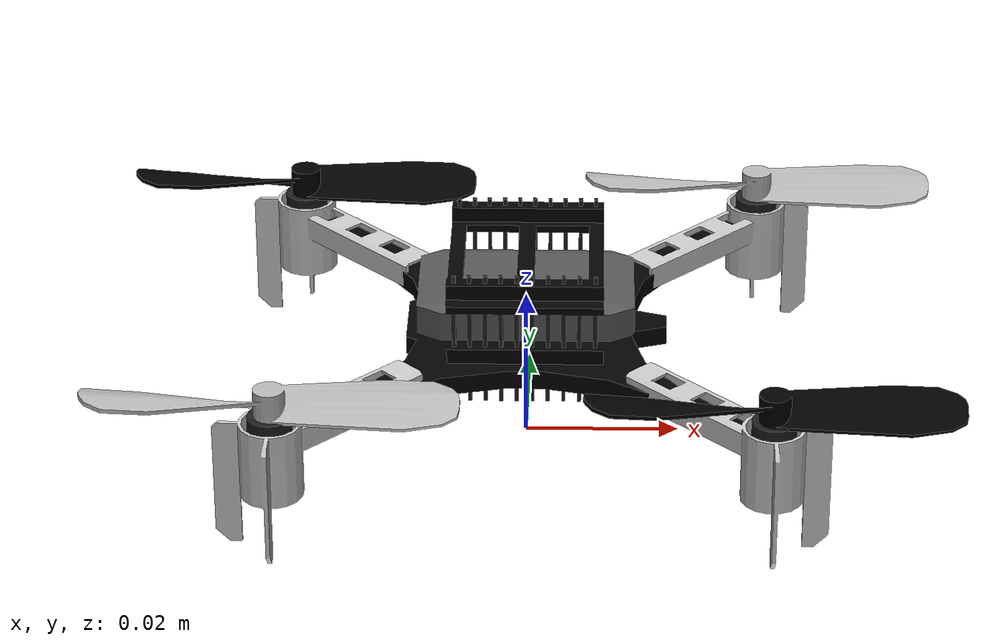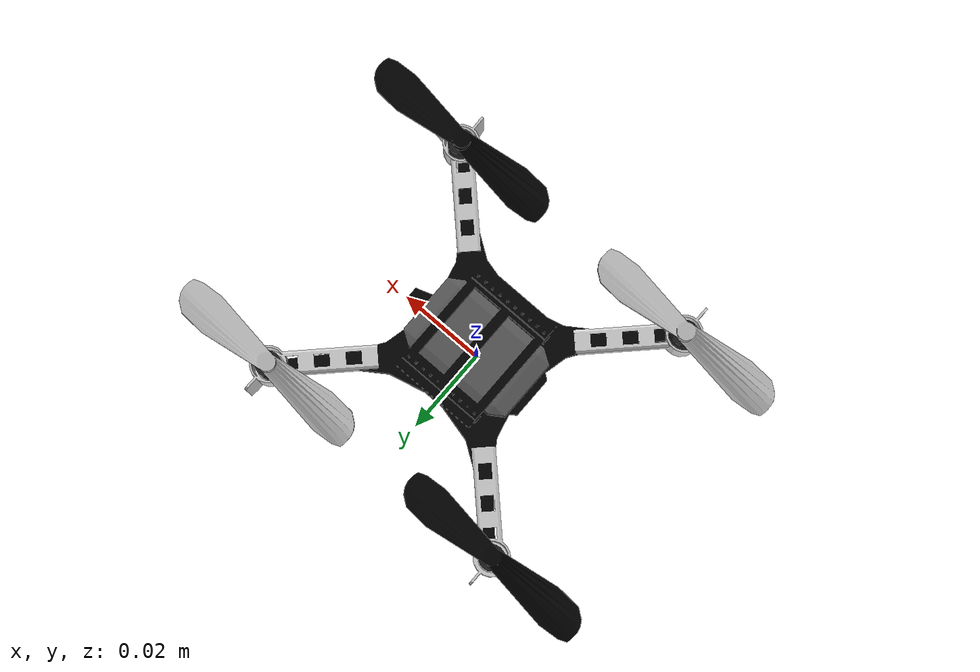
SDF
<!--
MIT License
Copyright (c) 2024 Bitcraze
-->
<?xml version="1.0" ?>

<sdf version="1.8">
  <model name="crazyflie">
    <link name="crazyflie/body">
      <pose> 0 0 17.425E-3 0 0 0</pose>
      <inertial>
        <mass>0.025</mass>
        <inertia>
          <ixx>16.571710E-06</ixx>
          <iyy>16.655602E-06</iyy>
          <izz>29.261652E-06</izz>
          <ixy>0.830806E-06</ixy>
          <ixz>0.718277E-06</ixz>
          <iyz>1.800197E-06</iyz>
        </inertia>
      </inertial>
      <collision name="crazyflie/body_collision">
        <geometry>
          <box>
            <size>0.10 0.10 34.850E-3</size>
          </box>
        </geometry>
      </collision>
      <visual name="crazyflie/body_visual">
        <geometry>
          <mesh>
            <uri>../../../meshes/collada_files/cf2_assembly.dae</uri>
          </mesh>
        </geometry>
      </visual>
      <sensor name='multiranger' type='gpu_lidar'>"
        <pose relative_to='crazyflie/base_link'>0 0 0.1 0 0 0</pose>
        <topic>lidar</topic>
        <update_rate>10</update_rate>
        <ray>
          <scan>
            <horizontal>
                <samples>4</samples>
                <resolution>1</resolution>
                <min_angle>-3.14</min_angle>
                <max_angle>1.57</max_angle>
            </horizontal>
            <vertical>
                <samples>1</samples>
                <resolution>0.01</resolution>
                <min_angle>0</min_angle>
                <max_angle>0</max_angle>
            </vertical>
          </scan>
          <range>
            <min>0.01</min>
            <max>3.49</max>
            <resolution>0.01</resolution>
          </range>
        </ray>
        <always_on>1</always_on>
        <visualize>true</visualize>
      </sensor>
    </link>
    <link name="crazyflie/m1_prop">
      <pose>0.031 -0.031 0.021 0 0 0</pose>
      <inertial>
        <mass>0.0008</mass>
        <inertia>
          <ixx>8.33333E-09</ixx>
          <iyy>1.08333E-07</iyy>
          <izz>1.13333E-07</izz>
        </inertia>
      </inertial>
      <visual name="crazyflie/m1_visual">
        <geometry>
          <mesh>
            <uri>../../../meshes/collada_files/ccw_prop.dae</uri>
          </mesh>
        </geometry>
      </visual>
    </link>
    <link name="crazyflie/m2_prop">
      <pose>-0.031 -0.031 0.021 0 0 0</pose>
      <inertial>
        <mass>0.0008</mass>
        <inertia>
          <ixx>8.33333E-09</ixx>
          <iyy>1.08333E-07</iyy>
          <izz>1.13333E-07</izz>
        </inertia>
      </inertial>
      <visual name="crazyflie/m2_visual">
        <geometry>
          <mesh>
            <uri>../../../meshes/collada_files/cw_prop.dae</uri>
          </mesh>
        </geometry>
      </visual>
    </link>
    <link name="crazyflie/m3_prop">
      <pose>-0.031 0.031 0.021 0 0 0</pose>
      <inertial>
        <mass>0.0008</mass>
        <inertia>
          <ixx>8.33333E-09</ixx>
          <iyy>1.08333E-07</iyy>
          <izz>1.13333E-07</izz>
        </inertia>
      </inertial>
      <visual name="crazyflie/m3_visual">
        <geometry>
          <mesh>
            <uri>../../../meshes/collada_files/ccw_prop.dae</uri>
          </mesh>
        </geometry>
      </visual>
    </link>
    <link name="crazyflie/m4_prop">
      <pose>0.031 0.031 0.021 0 0 0</pose>
      <inertial>
        <mass>0.0008</mass>
        <inertia>
          <ixx>8.33333E-09</ixx>
          <iyy>1.08333E-07</iyy>
          <izz>1.13333E-07</izz>
        </inertia>
      </inertial>
      <visual name="crazyflie/m4_visual">
        <geometry>
          <mesh>
            <uri>../../../meshes/collada_files/cw_prop.dae</uri>
          </mesh>
        </geometry>
      </visual>
    </link>
    <joint name="crazyflie/m1_joint" type="revolute">
      <child>crazyflie/m1_prop</child>
      <parent>crazyflie/body</parent>
      <axis>
        <xyz>0 0 1</xyz>
      </axis>
    </joint>
    <joint name="crazyflie/m2_joint" type="revolute">
      <child>crazyflie/m2_prop</child>
      <parent>crazyflie/body</parent>
      <axis>
        <xyz>0 0 1</xyz>
      </axis>
    </joint>
    <joint name="crazyflie/m3_joint" type="revolute">
      <child>crazyflie/m3_prop</child>
      <parent>crazyflie/body</parent>
      <axis>
        <xyz>0 0 1</xyz>
      </axis>
    </joint>
    <joint name="crazyflie/m4_joint" type="revolute">
      <child>crazyflie/m4_prop</child>
      <parent>crazyflie/body</parent>
      <axis>
        <xyz>0 0 1</xyz>
      </axis>
    </joint>
    <plugin
      filename="gz-sim-multicopter-motor-model-system"
      name="gz::sim::systems::MulticopterMotorModel">
      <robotNamespace>crazyflie</robotNamespace>
      <jointName>crazyflie/m1_joint</jointName>
      <linkName>crazyflie/m1_prop</linkName>
      <turningDirection>ccw</turningDirection>
      <maxRotVelocity>2618</maxRotVelocity>
      <motorConstant>1.28192e-08</motorConstant>
      <momentConstant>0.005964552</momentConstant>
      <rotorDragCoefficient>8.06428e-05</rotorDragCoefficient>
      <rollingMomentCoefficient>0.0000001</rollingMomentCoefficient>
      <rotorVelocitySlowdownSim>20</rotorVelocitySlowdownSim>
      <actuator_number>0</actuator_number>
      <motorType>velocity</motorType>
    </plugin>
    <plugin
      filename="gz-sim-multicopter-motor-model-system"
      name="gz::sim::systems::MulticopterMotorModel">
      <robotNamespace>crazyflie</robotNamespace>
      <jointName>crazyflie/m2_joint</jointName>
      <linkName>crazyflie/m2_prop</linkName>
      <turningDirection>cw</turningDirection>
      <maxRotVelocity>2618</maxRotVelocity>
      <motorConstant>1.28192e-08</motorConstant>
      <momentConstant>0.005964552</momentConstant>
      <rotorDragCoefficient>8.06428e-05</rotorDragCoefficient>
      <rollingMomentCoefficient>0.0000001</rollingMomentCoefficient>
      <rotorVelocitySlowdownSim>20</rotorVelocitySlowdownSim>
      <actuator_number>1</actuator_number>
      <motorType>velocity</motorType>
    </plugin>
    <plugin
      filename="gz-sim-multicopter-motor-model-system"
      name="gz::sim::systems::MulticopterMotorModel">
      <robotNamespace>crazyflie</robotNamespace>
      <jointName>crazyflie/m3_joint</jointName>
      <linkName>crazyflie/m3_prop</linkName>
      <turningDirection>ccw</turningDirection>
      <maxRotVelocity>2618</maxRotVelocity>
      <motorConstant>1.28192e-08</motorConstant>
      <momentConstant>0.005964552</momentConstant>
      <rotorDragCoefficient>8.06428e-05</rotorDragCoefficient>
      <rollingMomentCoefficient>0.0000001</rollingMomentCoefficient>
      <rotorVelocitySlowdownSim>20</rotorVelocitySlowdownSim>
      <actuator_number>2</actuator_number>
      <motorType>velocity</motorType>
    </plugin>
    <plugin
      filename="gz-sim-multicopter-motor-model-system"
      name="gz::sim::systems::MulticopterMotorModel">
      <robotNamespace>crazyflie</robotNamespace>
      <jointName>crazyflie/m4_joint</jointName>
      <linkName>crazyflie/m4_prop</linkName>
      <turningDirection>cw</turningDirection>
      <maxRotVelocity>2618</maxRotVelocity>
      <motorConstant>1.28192e-08</motorConstant>
      <momentConstant>0.005964552</momentConstant>
      <rotorDragCoefficient>8.06428e-05</rotorDragCoefficient>
      <rollingMomentCoefficient>0.0000001</rollingMomentCoefficient>
      <rotorVelocitySlowdownSim>20</rotorVelocitySlowdownSim>
      <actuator_number>3</actuator_number>
      <motorType>velocity</motorType>
    </plugin>
    <plugin
      filename="gz-sim-multicopter-control-system"
      name="gz::sim::systems::MulticopterVelocityControl">
      <robotNamespace>crazyflie</robotNamespace>
      <commandSubTopic>gazebo/command/twist</commandSubTopic>
      <enableSubTopic>enable</enableSubTopic>
      <comLinkName>crazyflie/body</comLinkName>
      <velocityGain>1.25 1.25 0.2425</velocityGain>
      <attitudeGain>0.02 0.02 0.02</attitudeGain>
      <angularRateGain>0.005 0.005 0.005</angularRateGain>
      <rotorConfiguration>
        <rotor>
          <jointName>crazyflie/m1_joint</jointName>
          <forceConstant>1.28192e-08</forceConstant>
          <momentConstant>0.005964552</momentConstant>
          <direction>1</direction>
        </rotor>
        <rotor>
          <jointName>crazyflie/m2_joint</jointName>
          <forceConstant>1.28192e-08</forceConstant>
          <momentConstant>0.005964552</momentConstant>
          <direction>-1</direction>
        </rotor>
        <rotor>
          <jointName>crazyflie/m3_joint</jointName>
          <forceConstant>1.28192e-08</forceConstant>
          <momentConstant>0.005964552</momentConstant>
          <direction>1</direction>
        </rotor>
        <rotor>
          <jointName>crazyflie/m4_joint</jointName>
          <forceConstant>1.28192e-08</forceConstant>
          <momentConstant>0.005964552</momentConstant>
          <direction>-1</direction>
        </rotor>
      </rotorConfiguration>
    </plugin>
    <plugin
      filename="gz-sim-odometry-publisher-system"
      name="gz::sim::systems::OdometryPublisher">
      <dimensions>3</dimensions>
    </plugin>
  </model>
</sdf>
